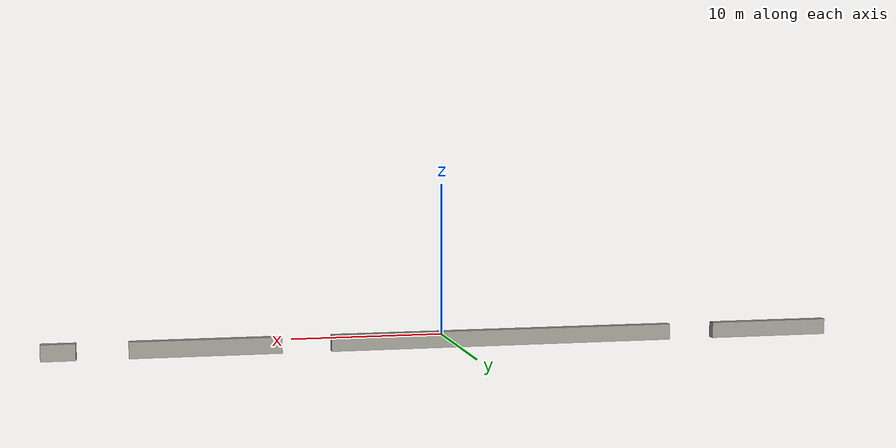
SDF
<?xml version="1.0" ?>
<sdf version="1.6">
  <model name="htab_ayirici">
    <static>true</static>
    <link name="parca_0">
      <pose>-21.0 5.0 0.500 0 0 0</pose>
      <collision name="collision">
        <geometry><box><size>8.0 0.5 1.0</size></box></geometry>
      </collision>
      <visual name="visual">
        <geometry><box><size>8.0 0.5 1.0</size></box></geometry>
        <material>
          <ambient>0.55 0.55 0.52 1</ambient>
          <diffuse>0.62 0.62 0.58 1</diffuse>
        </material>
      </visual>
    </link>
    <link name="parca_1">
      <pose>-3.0 5.0 0.500 0 0 0</pose>
      <collision name="collision">
        <geometry><box><size>22.0 0.5 1.0</size></box></geometry>
      </collision>
      <visual name="visual">
        <geometry><box><size>22.0 0.5 1.0</size></box></geometry>
        <material>
          <ambient>0.55 0.55 0.52 1</ambient>
          <diffuse>0.62 0.62 0.58 1</diffuse>
        </material>
      </visual>
    </link>
    <link name="parca_2">
      <pose>15.5 5.0 0.500 0 0 0</pose>
      <collision name="collision">
        <geometry><box><size>9.0 0.5 1.0</size></box></geometry>
      </collision>
      <visual name="visual">
        <geometry><box><size>9.0 0.5 1.0</size></box></geometry>
        <material>
          <ambient>0.55 0.55 0.52 1</ambient>
          <diffuse>0.62 0.62 0.58 1</diffuse>
        </material>
      </visual>
    </link>
    <link name="parca_3">
      <pose>24.0 5.0 0.500 0 0 0</pose>
      <collision name="collision">
        <geometry><box><size>2.0 0.5 1.0</size></box></geometry>
      </collision>
      <visual name="visual">
        <geometry><box><size>2.0 0.5 1.0</size></box></geometry>
        <material>
          <ambient>0.55 0.55 0.52 1</ambient>
          <diffuse>0.62 0.62 0.58 1</diffuse>
        </material>
      </visual>
    </link>
  </model>
</sdf>
